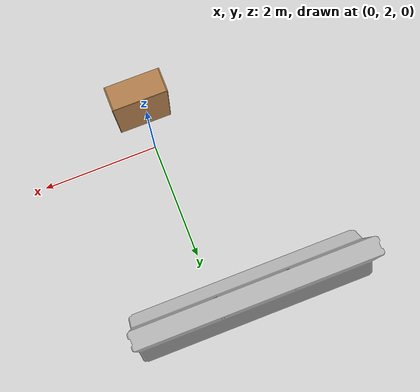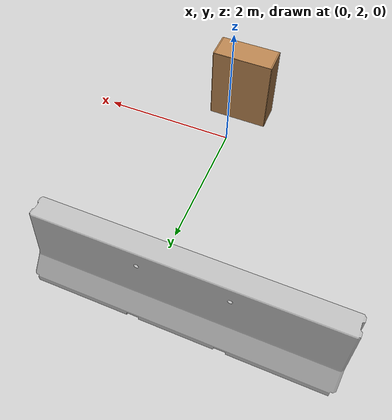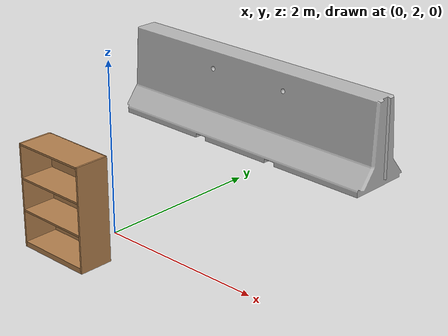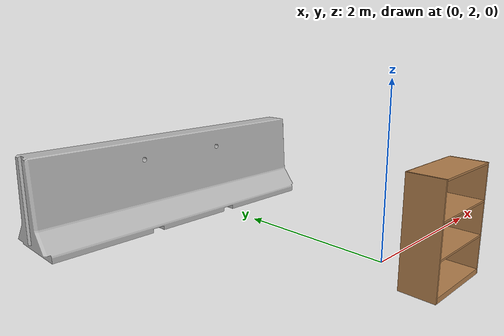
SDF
<sdf version="1.6">
 <world name="default">
  <model name="bookshelf">
   <static>1</static>
   <link name="link">
    <inertial><mass>1</mass></inertial>
    <collision name="back">
     <pose>0 0.005 0.6 0 -0 0</pose>
     <geometry><box><size>0.9 0.01 1.2</size></box></geometry>
    </collision>
    <visual name="visual1">
     <pose>0 0.005 0.6 0 -0 0</pose>
     <geometry><box><size>0.9 0.01 1.2</size></box></geometry>
     <material>
      <script><uri>file://media/materials/scripts/gazebo.material</uri><name>Gazebo/Wood</name></script>
     </material>
    </visual>
    <collision name="left_side">
     <pose>0.45 -0.195 0.6 0 -0 0</pose>
     <geometry><box><size>0.02 0.4 1.2</size></box></geometry>
    </collision>
    <visual name="visual2">
     <pose>0.45 -0.195 0.6 0 -0 0</pose>
     <geometry><box><size>0.02 0.4 1.2</size></box></geometry>
     <material>
      <script><uri>file://media/materials/scripts/gazebo.material</uri><name>Gazebo/Wood</name></script>
     </material>
    </visual>
    <collision name="right_side">
     <pose>-0.45 -0.195 0.6 0 -0 0</pose>
     <geometry><box><size>0.02 0.4 1.2</size></box></geometry>
    </collision>
    <visual name="visual3">
     <pose>-0.45 -0.195 0.6 0 -0 0</pose>
     <geometry><box><size>0.02 0.4 1.2</size></box></geometry>
     <material>
      <script><uri>file://media/materials/scripts/gazebo.material</uri><name>Gazebo/Wood</name></script>
     </material>
    </visual>
    <collision name="bottom">
     <pose>0 -0.195 0.03 0 -0 0</pose>
     <geometry><box><size>0.88 0.4 0.06</size></box></geometry>
    </collision>
    <visual name="visual4">
     <pose>0 -0.195 0.03 0 -0 0</pose>
     <geometry><box><size>0.88 0.4 0.06</size></box></geometry>
     <material>
      <script><uri>file://media/materials/scripts/gazebo.material</uri><name>Gazebo/Wood</name></script>
     </material>
    </visual>
    <collision name="top">
     <pose>0 -0.195 1.19 0 -0 0</pose>
     <geometry><box><size>0.88 0.4 0.02</size></box></geometry>
    </collision>
    <visual name="visual5">
     <pose>0 -0.195 1.19 0 -0 0</pose>
     <geometry><box><size>0.88 0.4 0.02</size></box></geometry>
     <material>
      <script><uri>file://media/materials/scripts/gazebo.material</uri><name>Gazebo/Wood</name></script>
     </material>
    </visual>
    <collision name="low_shelf">
     <pose>0 -0.195 0.43 0 -0 0</pose>
     <geometry><box><size>0.88 0.4 0.02</size></box></geometry>
    </collision>
    <visual name="visual6">
     <pose>0 -0.195 0.43 0 -0 0</pose>
     <geometry><box><size>0.88 0.4 0.02</size></box></geometry>
     <material>
      <script><uri>file://media/materials/scripts/gazebo.material</uri><name>Gazebo/Wood</name></script>
     </material>
    </visual>
    <collision name="high_shelf">
     <pose>0 -0.195 0.8 0 -0 0</pose>
     <geometry><box><size>0.88 0.4 0.02</size></box></geometry>
    </collision>
    <visual name="visual7">
     <pose>0 -0.195 0.8 0 -0 0</pose>
     <geometry><box><size>0.88 0.4 0.02</size></box></geometry>
     <material>
      <script><uri>file://media/materials/scripts/gazebo.material</uri><name>Gazebo/Wood</name></script>
     </material>
    </visual>
    <velocity_decay><linear>0</linear><angular>0</angular></velocity_decay>
   </link>
   <pose>0 1.53026 0 0 -0 0</pose>
  </model>
  <model name="jersey_barrier_4_clone">
   <static>1</static>
   <link name="link">
    <visual name="visual">
     <geometry>
      <mesh><uri>model://jersey_barrier/meshes/jersey_barrier.dae</uri><scale>1 1 1</scale></mesh>
     </geometry>
    </visual>
    <collision name="upright">
     <pose>0 0 0.5715 0 -0 0</pose>
     <geometry><box><size>4.06542 0.3063 1.143</size></box></geometry>
    </collision>
    <collision name="base">
     <pose>0 0 0.032258 0 -0 0</pose>
     <geometry><box><size>4.06542 0.8107 0.064516</size></box></geometry>
    </collision>
    <collision name="base2">
     <pose>0 0 0.1 0 -0 0</pose>
     <geometry><box><size>4.06542 0.65 0.1</size></box></geometry>
    </collision>
    <collision name="base3">
     <pose>0 0 0.2 0 -0 0</pose>
     <geometry><box><size>4.06542 0.5 0.1</size></box></geometry>
    </collision>
    <collision name="left-angle">
     <pose>0 -0.224 0.2401 0.9 -0 0</pose>
     <geometry><box><size>4.06542 0.5 0.064516</size></box></geometry>
    </collision>
    <collision name="right-angle">
     <pose>0 0.224 0.2401 -0.9 0 0</pose>
     <geometry><box><size>4.06542 0.5 0.064516</size></box></geometry>
    </collision>
   </link>
   <pose>-0.593883 4.93879 0 0 -0 0</pose>
  </model>
 </world>
</sdf>
